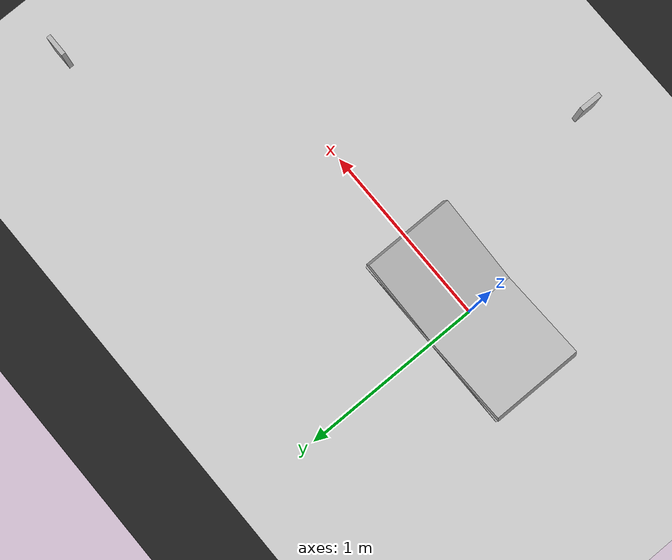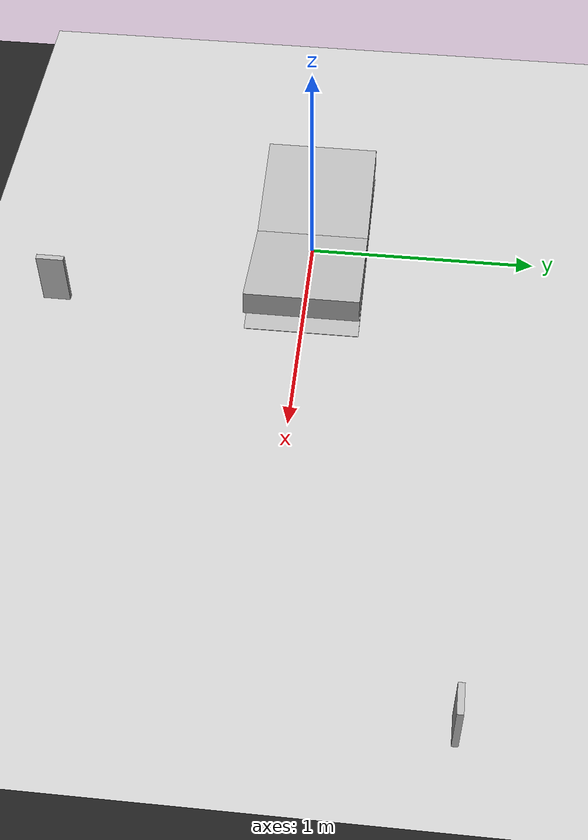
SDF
<sdf version="1.6">
 <world name="default">
  <scene>
   <ambient>0 0 0 1</ambient>
   <shadows>0</shadows>
   <grid>0</grid>
   <background>0.7 0.7 0.7 1</background>
  </scene>
  <model name="course">
   <static>1</static>
   <link name="course_link">
    <collision name="course_collision">
     <geometry><plane><normal>0 0 1</normal><size>5.325 3</size></plane></geometry>
     <surface><friction><ode><mu>100</mu><mu2>50</mu2></ode></friction></surface>
    </collision>
    <visual name="course_visual">
     <cast_shadows>0</cast_shadows>
     <geometry><plane><normal>0 0 1</normal><size>5.325 3</size></plane></geometry>
     <material>
      <script>
       <uri>model://turtlebot3_autorace/course/materials/scripts</uri>
       <uri>model://turtlebot3_autorace/course/materials/textures</uri>
       <name>course</name>
      </script>
     </material>
    </visual>
   </link>
  </model>
  <model name="box">
   <static>true</static>
   <pose>0 0 0.05 0 -0.2 0</pose>
   <link name="ramp_link">
    <collision name="collision"><geometry><box><size>1 0.5 .1</size></box></geometry></collision>
    <visual name="visual"><geometry><box><size>1 0.5 .1</size></box></geometry></visual>
   </link>
  </model>
  <model name="box1">
   <static>true</static>
   <pose>0 0 0.05 0 0.2 0</pose>
   <link name="ramp_link1">
    <collision name="collision"><geometry><box><size>1 0.5 .1</size></box></geometry></collision>
    <visual name="visual"><geometry><box><size>1 0.5 .1</size></box></geometry></visual>
   </link>
  </model>
  <model name="traffic_parking">
   <static>1</static>
   <link name="box">
    <collision name="collision"><geometry><box><size>0.12 0.025 0.25</size></box></geometry></collision>
    <visual name="visual">
     <geometry><box><size>0.12 0.025 0.25</size></box></geometry>
     <material>
      <script>
       <uri>model://turtlebot3_autorace/traffic_parking/materials/scripts</uri>
       <uri>model://turtlebot3_autorace/traffic_parking/materials/textures</uri>
       <name>traffic_parking</name>
      </script>
     </material>
    </visual>
   </link>
   <pose>2.29475 0.738513 0.13 0 0 -0.003706</pose>
  </model>
  <model name="traffic_stop">
   <static>1</static>
   <link name="box">
    <collision name="collision"><geometry><box><size>0.12 0.025 0.25</size></box></geometry></collision>
    <visual name="visual">
     <geometry><box><size>0.12 0.025 0.25</size></box></geometry>
     <material>
      <script>
       <uri>model://turtlebot3_autorace/traffic_stop/materials/scripts</uri>
       <uri>model://turtlebot3_autorace/traffic_stop/materials/textures</uri>
       <name>traffic_stop</name>
      </script>
     </material>
    </visual>
   </link>
   <pose>0.399792 -1.09646 0.125 0 0 -1.57493</pose>
  </model>
  <light name="sun" type="directional">
   <pose>0 0 10 0 -0 0</pose>
   <diffuse>0.8 0.8 0.8 1</diffuse>
   <specular>0.1 0.1 0.1 1</specular>
   <attenuation>
    <range>1000</range>
    <constant>0.9</constant>
    <linear>0.01</linear>
    <quadratic>0.001</quadratic>
   </attenuation>
   <direction>-0.5 0.5 -1</direction>
  </light>
  <model name="ground2">
   <pose>0 0 -0.1 0 -0 0</pose>
   <static>1</static>
   <link name="ground">
    <collision name="ground_coll"><geometry><box><size>8 8 0.01</size></box></geometry></collision>
    <visual name="ground_vis">
     <geometry><box><size>10 10 0.01</size></box></geometry>
     <material>
      <script><uri>file://media/materials/scripts/gazebo.material</uri><name>Gazebo/FlatBlack</name></script>
     </material>
    </visual>
   </link>
  </model>
  <gravity>0 0 -9.8</gravity>
  <magnetic_field>6e-06 2.3e-05 -4.2e-05</magnetic_field>
  <atmosphere type="adiabatic"/>
  <physics name="default_physics" default="0" type="ode">
   <max_step_size>0.001</max_step_size>
   <real_time_factor>1</real_time_factor>
   <real_time_update_rate>1000</real_time_update_rate>
  </physics>
  <spherical_coordinates>
   <surface_model>EARTH_WGS84</surface_model>
   <latitude_deg>0</latitude_deg>
   <longitude_deg>0</longitude_deg>
   <elevation>0</elevation>
   <heading_deg>0</heading_deg>
  </spherical_coordinates>
  <light name="user_point_light_2" type="point">
   <pose>-0.948146 0.604519 1 0 -0 0</pose>
   <diffuse>0.5 0.5 0.5 1</diffuse>
   <specular>0.1 0.1 0.1 1</specular>
   <attenuation>
    <range>20</range>
    <constant>0.5</constant>
    <linear>0.01</linear>
    <quadratic>0.001</quadratic>
   </attenuation>
   <cast_shadows>0</cast_shadows>
   <direction>0 0 -1</direction>
  </light>
  <light name="user_point_light_6" type="point">
   <pose>1.63854 1.69565 1 0 -0 0</pose>
   <diffuse>0.5 0.5 0.5 1</diffuse>
   <specular>0.1 0.1 0.1 1</specular>
   <attenuation>
    <range>20</range>
    <constant>0.5</constant>
    <linear>0.01</linear>
    <quadratic>0.001</quadratic>
   </attenuation>
   <cast_shadows>0</cast_shadows>
   <direction>0 0 -1</direction>
  </light>
  <light name="user_point_light_7" type="point">
   <pose>0.42 -3.31 1 0 -0 0</pose>
   <diffuse>0.5 0.5 0.5 1</diffuse>
   <specular>0.1 0.1 0.1 1</specular>
   <attenuation>
    <range>20</range>
    <constant>0.5</constant>
    <linear>0.01</linear>
    <quadratic>0.001</quadratic>
   </attenuation>
   <cast_shadows>0</cast_shadows>
   <direction>0 0 -1</direction>
  </light>
  <light name="user_point_light_8" type="point">
   <pose>-1.8 1.5 1 0 -0 0</pose>
   <diffuse>0.5 0.5 0.5 1</diffuse>
   <specular>0.1 0.1 0.1 1</specular>
   <attenuation>
    <range>20</range>
    <constant>0.5</constant>
    <linear>0.01</linear>
    <quadratic>0.001</quadratic>
   </attenuation>
   <cast_shadows>0</cast_shadows>
   <direction>0 0 -1</direction>
  </light>
 </world>
</sdf>
